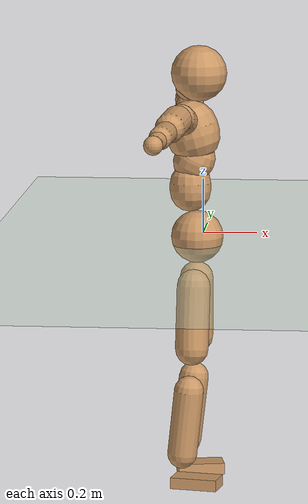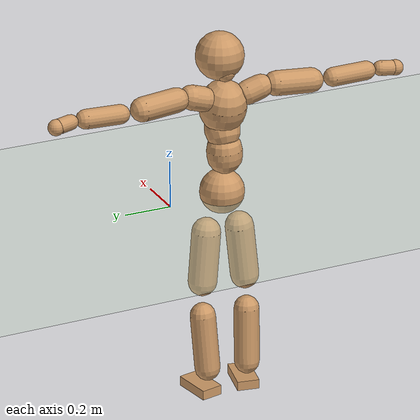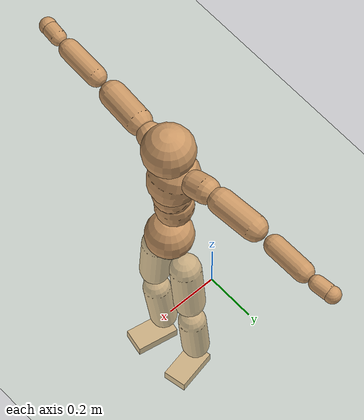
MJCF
<mujoco model="humanoid">
  <compiler coordinate="local"/>
  <default>
    <joint damping="0.0" armature="0.01" stiffness="0.0" limited="true"/>
    <geom conaffinity="1" condim="3" contype="7" margin="0.001" rgba="0.8 0.6 .4 1"/>
  </default>
  <asset>
    <texture type="skybox" builtin="gradient" rgb1=".4 .5 .6" rgb2="0 0 0" width="100" height="100"/>
    <texture builtin="flat" height="1278" mark="cross" markrgb="1 1 1" name="texgeom" random="0.01" rgb1="0.8 0.6 0.4" rgb2="0.8 0.6 0.4" type="cube" width="127"/>
    <texture builtin="checker" height="100" name="texplane" rgb1="0 0 0" rgb2="0.8 0.8 0.8" type="2d" width="100"/>
    <material name="MatPlane" reflectance="0.5" shininess="1" specular="1" texrepeat="60 60" texture="texplane"/>
    <material name="geom" texture="texgeom" texuniform="true"/>
  </asset>
  <worldbody>
    <light cutoff="100" diffuse="1 1 1" dir="-0 0 -1.3" directional="true" exponent="1" pos="0 0 1.3" specular=".1 .1 .1"/>
    <geom conaffinity="1" condim="3" name="floor" pos="0 0 0" rgba="0.8 0.9 0.8 1" size="100 100 .2" type="plane" material="MatPlane"/>
    <body name="Pelvis" pos="-0.0018 -0.2341 0.0282">
      <freejoint name="Pelvis"/>
      <geom type="sphere" contype="1" conaffinity="1" density="500" size="0.0950" pos="0.0000 0.0000 0.0000" name="Pelvis"/>
      <body name="L_Hip" pos="-0.0084 0.0706 -0.0936">
        <joint name="L_Hip_x" type="hinge" pos="0 0 0" axis="1 0 0" stiffness="800" damping="80" armature="0.02" range="-180.0000 180.0000"/>
        <joint name="L_Hip_y" type="hinge" pos="0 0 0" axis="0 1 0" stiffness="800" damping="80" armature="0.02" range="-180.0000 180.0000"/>
        <joint name="L_Hip_z" type="hinge" pos="0 0 0" axis="0 0 1" stiffness="800" damping="80" armature="0.02" range="-180.0000 180.0000"/>
        <geom type="capsule" contype="1" conaffinity="1" density="500" fromto="-0.0009 0.0066 -0.0745 -0.0037 0.0263 -0.2979" size="0.0615" name="L_Hip"/>
        <body name="L_Knee" pos="-0.0046 0.0329 -0.3724">
          <joint name="L_Knee_x" type="hinge" pos="0 0 0" axis="1 0 0" stiffness="800" damping="80" armature="0.02" range="-180.0000 180.0000"/>
          <joint name="L_Knee_y" type="hinge" pos="0 0 0" axis="0 1 0" stiffness="800" damping="80" armature="0.02" range="-180.0000 180.0000"/>
          <joint name="L_Knee_z" type="hinge" pos="0 0 0" axis="0 0 1" stiffness="800" damping="80" armature="0.02" range="-180.0000 180.0000"/>
          <geom type="capsule" contype="1" conaffinity="1" density="500" fromto="-0.0089 -0.0027 -0.0792 -0.0356 -0.0110 -0.3166" size="0.0544" name="L_Knee"/>
          <body name="L_Ankle" pos="-0.0445 -0.0137 -0.3958">
            <joint name="L_Ankle_x" type="hinge" pos="0 0 0" axis="1 0 0" stiffness="800" damping="80" armature="0.02" range="-180.0000 180.0000"/>
            <joint name="L_Ankle_y" type="hinge" pos="0 0 0" axis="0 1 0" stiffness="800" damping="80" armature="0.02" range="-180.0000 180.0000"/>
            <joint name="L_Ankle_z" type="hinge" pos="0 0 0" axis="0 0 1" stiffness="800" damping="80" armature="0.02" range="-180.0000 180.0000"/>
            <geom type="box" contype="1" conaffinity="1" density="500" pos="0.0598 0.0118 -0.0279" size="0.0847 0.047 0.0211" quat="0.9953 0.0000 0.0000 0.0971" name="L_Ankle"/>
            <body name="L_Toe" pos="0.1195 0.0235 -0.0557">
              <joint name="L_Toe_x" type="hinge" pos="0 0 0" axis="1 0 0" stiffness="500" damping="50" armature="0.02" range="-180.0000 180.0000"/>
              <joint name="L_Toe_y" type="hinge" pos="0 0 0" axis="0 1 0" stiffness="500" damping="50" armature="0.02" range="-180.0000 180.0000"/>
              <joint name="L_Toe_z" type="hinge" pos="0 0 0" axis="0 0 1" stiffness="500" damping="50" armature="0.02" range="-180.0000 180.0000"/>
              <geom type="box" contype="1" conaffinity="1" density="500" pos="0.0000 0.0000 0.0271" size="0.001 0.0024 0.001" quat="0.9946 0.0000 0.0000 0.1034" name="L_Toe"/>
            </body>
          </body>
        </body>
      </body>
      <body name="R_Hip" pos="-0.0053 -0.0684 -0.0926">
        <joint name="R_Hip_x" type="hinge" pos="0 0 0" axis="1 0 0" stiffness="800" damping="80" armature="0.02" range="-180.0000 180.0000"/>
        <joint name="R_Hip_y" type="hinge" pos="0 0 0" axis="0 1 0" stiffness="800" damping="80" armature="0.02" range="-180.0000 180.0000"/>
        <joint name="R_Hip_z" type="hinge" pos="0 0 0" axis="0 0 1" stiffness="800" damping="80" armature="0.02" range="-180.0000 180.0000"/>
        <geom type="capsule" contype="1" conaffinity="1" density="500" fromto="-0.0016 -0.0076 -0.0763 -0.0066 -0.0302 -0.3050" size="0.0606" name="R_Hip"/>
        <body name="R_Knee" pos="-0.0082 -0.0378 -0.3813">
          <joint name="R_Knee_x" type="hinge" pos="0 0 0" axis="1 0 0" stiffness="800" damping="80" armature="0.02" range="-180.0000 180.0000"/>
          <joint name="R_Knee_y" type="hinge" pos="0 0 0" axis="0 1 0" stiffness="800" damping="80" armature="0.02" range="-180.0000 180.0000"/>
          <joint name="R_Knee_z" type="hinge" pos="0 0 0" axis="0 0 1" stiffness="800" damping="80" armature="0.02" range="-180.0000 180.0000"/>
          <geom type="capsule" contype="1" conaffinity="1" density="500" fromto="-0.0085 0.0032 -0.0793 -0.0342 0.0129 -0.3172" size="0.0544" name="R_Knee"/>
          <body name="R_Ankle" pos="-0.0427 0.0161 -0.3965">
            <joint name="R_Ankle_x" type="hinge" pos="0 0 0" axis="1 0 0" stiffness="800" damping="80" armature="0.02" range="-180.0000 180.0000"/>
            <joint name="R_Ankle_y" type="hinge" pos="0 0 0" axis="0 1 0" stiffness="800" damping="80" armature="0.02" range="-180.0000 180.0000"/>
            <joint name="R_Ankle_z" type="hinge" pos="0 0 0" axis="0 0 1" stiffness="800" damping="80" armature="0.02" range="-180.0000 180.0000"/>
            <geom type="box" contype="1" conaffinity="1" density="500" pos="0.0616 -0.0118 -0.0239" size="0.086 0.0479 0.0207" quat="0.9955 0.0000 0.0000 -0.0948" name="R_Ankle"/>
            <body name="R_Toe" pos="0.1232 -0.0237 -0.0478">
              <joint name="R_Toe_x" type="hinge" pos="0 0 0" axis="1 0 0" stiffness="500" damping="50" armature="0.02" range="-180.0000 180.0000"/>
              <joint name="R_Toe_y" type="hinge" pos="0 0 0" axis="0 1 0" stiffness="500" damping="50" armature="0.02" range="-180.0000 180.0000"/>
              <joint name="R_Toe_z" type="hinge" pos="0 0 0" axis="0 0 1" stiffness="500" damping="50" armature="0.02" range="-180.0000 180.0000"/>
              <geom type="box" contype="1" conaffinity="1" density="500" pos="0.0000 0.0000 0.0253" size="0.001 0.0024 0.0011" quat="0.9963 0.0000 0.0000 -0.0856" name="R_Toe"/>
            </body>
          </body>
        </body>
      </body>
      <body name="Torso" pos="-0.0252 -0.0026 0.1107">
        <joint name="Torso_x" type="hinge" pos="0 0 0" axis="1 0 0" stiffness="1000" damping="100" armature="0.02" range="-180.0000 180.0000"/>
        <joint name="Torso_y" type="hinge" pos="0 0 0" axis="0 1 0" stiffness="1000" damping="100" armature="0.02" range="-180.0000 180.0000"/>
        <joint name="Torso_z" type="hinge" pos="0 0 0" axis="0 0 1" stiffness="1000" damping="100" armature="0.02" range="-180.0000 180.0000"/>
        <geom type="capsule" contype="1" conaffinity="1" density="500" fromto="0.0004 0.0032 0.0852 0.0003 0.0021 0.0568" size="0.0746" name="Torso"/>
        <body name="Spine" pos="0.0007 0.0053 0.142">
          <joint name="Spine_x" type="hinge" pos="0 0 0" axis="1 0 0" stiffness="1000" damping="100" armature="0.02" range="-180.0000 180.0000"/>
          <joint name="Spine_y" type="hinge" pos="0 0 0" axis="0 1 0" stiffness="1000" damping="100" armature="0.02" range="-180.0000 180.0000"/>
          <joint name="Spine_z" type="hinge" pos="0 0 0" axis="0 0 1" stiffness="1000" damping="100" armature="0.02" range="-180.0000 180.0000"/>
          <geom type="capsule" contype="1" conaffinity="1" density="500" fromto="0.0162 0.0010 0.0328 0.0108 0.0006 0.0219" size="0.0744" name="Spine"/>
          <body name="Chest" pos="0.0271 0.0016 0.0547">
            <joint name="Chest_x" type="hinge" pos="0 0 0" axis="1 0 0" stiffness="1000" damping="100" armature="0.02" range="-180.0000 180.0000"/>
            <joint name="Chest_y" type="hinge" pos="0 0 0" axis="0 1 0" stiffness="1000" damping="100" armature="0.02" range="-180.0000 180.0000"/>
            <joint name="Chest_z" type="hinge" pos="0 0 0" axis="0 0 1" stiffness="1000" damping="100" armature="0.02" range="-180.0000 180.0000"/>
            <geom type="capsule" contype="1" conaffinity="1" density="500" fromto="-0.0253 -0.0011 0.0935 -0.0169 -0.0007 0.0623" size="0.0975" name="Chest"/>
            <body name="Neck" pos="-0.0487 -0.003 0.2214">
              <joint name="Neck_x" type="hinge" pos="0 0 0" axis="1 0 0" stiffness="500" damping="50" armature="0.02" range="-180.0000 180.0000"/>
              <joint name="Neck_y" type="hinge" pos="0 0 0" axis="0 1 0" stiffness="500" damping="50" armature="0.02" range="-180.0000 180.0000"/>
              <joint name="Neck_z" type="hinge" pos="0 0 0" axis="0 0 1" stiffness="500" damping="50" armature="0.02" range="-180.0000 180.0000"/>
              <geom type="capsule" contype="1" conaffinity="1" density="500" fromto="0.0105 0.0010 0.0135 0.0419 0.0040 0.0540" size="0.0433" name="Neck"/>
              <body name="Head" pos="0.0524 0.005 0.0674">
                <joint name="Head_x" type="hinge" pos="0 0 0" axis="1 0 0" stiffness="500" damping="50" armature="0.02" range="-180.0000 180.0000"/>
                <joint name="Head_y" type="hinge" pos="0 0 0" axis="0 1 0" stiffness="500" damping="50" armature="0.02" range="-180.0000 180.0000"/>
                <joint name="Head_z" type="hinge" pos="0 0 0" axis="0 0 1" stiffness="500" damping="50" armature="0.02" range="-180.0000 180.0000"/>
                <geom type="sphere" contype="1" conaffinity="1" density="500" size="0.1012" pos="0.0000 0.0000 0.0000" name="Head"/>
              </body>
            </body>
            <body name="L_Thorax" pos="-0.0364 0.0782 0.1244">
              <joint name="L_Thorax_x" type="hinge" pos="0 0 0" axis="1 0 0" stiffness="500" damping="50" armature="0.02" range="-180.0000 180.0000"/>
              <joint name="L_Thorax_y" type="hinge" pos="0 0 0" axis="0 1 0" stiffness="500" damping="50" armature="0.02" range="-180.0000 180.0000"/>
              <joint name="L_Thorax_z" type="hinge" pos="0 0 0" axis="0 0 1" stiffness="500" damping="50" armature="0.02" range="-180.0000 180.0000"/>
              <geom type="capsule" contype="1" conaffinity="1" density="500" fromto="-0.0016 0.0180 0.0060 -0.0063 0.0719 0.0240" size="0.0519" name="L_Thorax"/>
              <body name="L_Shoulder" pos="-0.0079 0.0899 0.0301">
                <joint name="L_Shoulder_x" type="hinge" pos="0 0 0" axis="1 0 0" stiffness="500" damping="50" armature="0.02" range="-720.0000 720.0000"/>
                <joint name="L_Shoulder_y" type="hinge" pos="0 0 0" axis="0 1 0" stiffness="500" damping="50" armature="0.02" range="-720.0000 720.0000"/>
                <joint name="L_Shoulder_z" type="hinge" pos="0 0 0" axis="0 0 1" stiffness="500" damping="50" armature="0.02" range="-720.0000 720.0000"/>
                <geom type="capsule" contype="1" conaffinity="1" density="500" fromto="-0.0054 0.0516 -0.0024 -0.0217 0.2062 -0.0098" size="0.0512" name="L_Shoulder"/>
                <body name="L_Elbow" pos="-0.0271 0.2578 -0.0122">
                  <joint name="L_Elbow_x" type="hinge" pos="0 0 0" axis="1 0 0" stiffness="500" damping="50" armature="0.02" range="-720.0000 720.0000"/>
                  <joint name="L_Elbow_y" type="hinge" pos="0 0 0" axis="0 1 0" stiffness="500" damping="50" armature="0.02" range="-720.0000 720.0000"/>
                  <joint name="L_Elbow_z" type="hinge" pos="0 0 0" axis="0 0 1" stiffness="500" damping="50" armature="0.02" range="-720.0000 720.0000"/>
                  <geom type="capsule" contype="1" conaffinity="1" density="500" fromto="-0.0001 0.0491 0.0017 -0.0004 0.1964 0.0068" size="0.0402" name="L_Elbow"/>
                  <body name="L_Wrist" pos="-0.0005 0.2454 0.0085">
                    <joint name="L_Wrist_x" type="hinge" pos="0 0 0" axis="1 0 0" stiffness="300" damping="30" armature="0.02" range="-180.0000 180.0000"/>
                    <joint name="L_Wrist_y" type="hinge" pos="0 0 0" axis="0 1 0" stiffness="300" damping="30" armature="0.02" range="-180.0000 180.0000"/>
                    <joint name="L_Wrist_z" type="hinge" pos="0 0 0" axis="0 0 1" stiffness="300" damping="30" armature="0.02" range="-180.0000 180.0000"/>
                    <geom type="capsule" contype="1" conaffinity="1" density="500" fromto="-0.0029 0.0165 -0.0017 -0.0114 0.0661 -0.0069" size="0.0313" name="L_Wrist"/>
                    <body name="L_Hand" pos="-0.0143 0.0826 -0.0086">
                      <joint name="L_Hand_x" type="hinge" pos="0 0 0" axis="1 0 0" stiffness="300" damping="30" armature="0.02" range="-180.0000 180.0000"/>
                      <joint name="L_Hand_y" type="hinge" pos="0 0 0" axis="0 1 0" stiffness="300" damping="30" armature="0.02" range="-180.0000 180.0000"/>
                      <joint name="L_Hand_z" type="hinge" pos="0 0 0" axis="0 0 1" stiffness="300" damping="30" armature="0.02" range="-180.0000 180.0000"/>
                      <geom type="sphere" contype="1" conaffinity="1" density="500" size="0.0332" pos="0.0000 0.0000 0.0000" name="L_Hand"/>
                    </body>
                  </body>
                </body>
              </body>
            </body>
            <body name="R_Thorax" pos="-0.0413 -0.0807 0.1215">
              <joint name="R_Thorax_x" type="hinge" pos="0 0 0" axis="1 0 0" stiffness="500" damping="50" armature="0.02" range="-180.0000 180.0000"/>
              <joint name="R_Thorax_y" type="hinge" pos="0 0 0" axis="0 1 0" stiffness="500" damping="50" armature="0.02" range="-180.0000 180.0000"/>
              <joint name="R_Thorax_z" type="hinge" pos="0 0 0" axis="0 0 1" stiffness="500" damping="50" armature="0.02" range="-180.0000 180.0000"/>
              <geom type="capsule" contype="1" conaffinity="1" density="500" fromto="-0.0018 -0.0189 0.0064 -0.0073 -0.0755 0.0256" size="0.0507" name="R_Thorax"/>
              <body name="R_Shoulder" pos="-0.0091 -0.0944 0.032">
                <joint name="R_Shoulder_x" type="hinge" pos="0 0 0" axis="1 0 0" stiffness="500" damping="50" armature="0.02" range="-720.0000 720.0000"/>
                <joint name="R_Shoulder_y" type="hinge" pos="0 0 0" axis="0 1 0" stiffness="500" damping="50" armature="0.02" range="-720.0000 720.0000"/>
                <joint name="R_Shoulder_z" type="hinge" pos="0 0 0" axis="0 0 1" stiffness="500" damping="50" armature="0.02" range="-720.0000 720.0000"/>
                <geom type="capsule" contype="1" conaffinity="1" density="500" fromto="-0.0042 -0.0503 -0.0026 -0.0166 -0.2013 -0.0102" size="0.0526" name="R_Shoulder"/>
                <body name="R_Elbow" pos="-0.0208 -0.2516 -0.0128">
                  <joint name="R_Elbow_x" type="hinge" pos="0 0 0" axis="1 0 0" stiffness="500" damping="50" armature="0.02" range="-720.0000 720.0000"/>
                  <joint name="R_Elbow_y" type="hinge" pos="0 0 0" axis="0 1 0" stiffness="500" damping="50" armature="0.02" range="-720.0000 720.0000"/>
                  <joint name="R_Elbow_z" type="hinge" pos="0 0 0" axis="0 0 1" stiffness="500" damping="50" armature="0.02" range="-720.0000 720.0000"/>
                  <geom type="capsule" contype="1" conaffinity="1" density="500" fromto="-0.0011 -0.0503 0.0014 -0.0044 -0.2011 0.0056" size="0.0403" name="R_Elbow"/>
                  <body name="R_Wrist" pos="-0.0055 -0.2514 0.007">
                    <joint name="R_Wrist_x" type="hinge" pos="0 0 0" axis="1 0 0" stiffness="300" damping="30" armature="0.02" range="-180.0000 180.0000"/>
                    <joint name="R_Wrist_y" type="hinge" pos="0 0 0" axis="0 1 0" stiffness="300" damping="30" armature="0.02" range="-180.0000 180.0000"/>
                    <joint name="R_Wrist_z" type="hinge" pos="0 0 0" axis="0 0 1" stiffness="300" damping="30" armature="0.02" range="-180.0000 180.0000"/>
                    <geom type="capsule" contype="1" conaffinity="1" density="500" fromto="-0.0020 -0.0166 -0.0013 -0.0082 -0.0664 -0.0052" size="0.032" name="R_Wrist"/>
                    <body name="R_Hand" pos="-0.0102 -0.083 -0.0065">
                      <joint name="R_Hand_x" type="hinge" pos="0 0 0" axis="1 0 0" stiffness="300" damping="30" armature="0.02" range="-180.0000 180.0000"/>
                      <joint name="R_Hand_y" type="hinge" pos="0 0 0" axis="0 1 0" stiffness="300" damping="30" armature="0.02" range="-180.0000 180.0000"/>
                      <joint name="R_Hand_z" type="hinge" pos="0 0 0" axis="0 0 1" stiffness="300" damping="30" armature="0.02" range="-180.0000 180.0000"/>
                      <geom type="sphere" contype="1" conaffinity="1" density="500" size="0.0334" pos="0.0000 0.0000 0.0000" name="R_Hand"/>
                    </body>
                  </body>
                </body>
              </body>
            </body>
          </body>
        </body>
      </body>
    </body>
  </worldbody>
  <actuator>
    <motor name="L_Hip_x" joint="L_Hip_x" gear="500"/>
    <motor name="L_Hip_y" joint="L_Hip_y" gear="500"/>
    <motor name="L_Hip_z" joint="L_Hip_z" gear="500"/>
    <motor name="L_Knee_x" joint="L_Knee_x" gear="500"/>
    <motor name="L_Knee_y" joint="L_Knee_y" gear="500"/>
    <motor name="L_Knee_z" joint="L_Knee_z" gear="500"/>
    <motor name="L_Ankle_x" joint="L_Ankle_x" gear="500"/>
    <motor name="L_Ankle_y" joint="L_Ankle_y" gear="500"/>
    <motor name="L_Ankle_z" joint="L_Ankle_z" gear="500"/>
    <motor name="L_Toe_x" joint="L_Toe_x" gear="500"/>
    <motor name="L_Toe_y" joint="L_Toe_y" gear="500"/>
    <motor name="L_Toe_z" joint="L_Toe_z" gear="500"/>
    <motor name="R_Hip_x" joint="R_Hip_x" gear="500"/>
    <motor name="R_Hip_y" joint="R_Hip_y" gear="500"/>
    <motor name="R_Hip_z" joint="R_Hip_z" gear="500"/>
    <motor name="R_Knee_x" joint="R_Knee_x" gear="500"/>
    <motor name="R_Knee_y" joint="R_Knee_y" gear="500"/>
    <motor name="R_Knee_z" joint="R_Knee_z" gear="500"/>
    <motor name="R_Ankle_x" joint="R_Ankle_x" gear="500"/>
    <motor name="R_Ankle_y" joint="R_Ankle_y" gear="500"/>
    <motor name="R_Ankle_z" joint="R_Ankle_z" gear="500"/>
    <motor name="R_Toe_x" joint="R_Toe_x" gear="500"/>
    <motor name="R_Toe_y" joint="R_Toe_y" gear="500"/>
    <motor name="R_Toe_z" joint="R_Toe_z" gear="500"/>
    <motor name="Torso_x" joint="Torso_x" gear="500"/>
    <motor name="Torso_y" joint="Torso_y" gear="500"/>
    <motor name="Torso_z" joint="Torso_z" gear="500"/>
    <motor name="Spine_x" joint="Spine_x" gear="500"/>
    <motor name="Spine_y" joint="Spine_y" gear="500"/>
    <motor name="Spine_z" joint="Spine_z" gear="500"/>
    <motor name="Chest_x" joint="Chest_x" gear="500"/>
    <motor name="Chest_y" joint="Chest_y" gear="500"/>
    <motor name="Chest_z" joint="Chest_z" gear="500"/>
    <motor name="Neck_x" joint="Neck_x" gear="500"/>
    <motor name="Neck_y" joint="Neck_y" gear="500"/>
    <motor name="Neck_z" joint="Neck_z" gear="500"/>
    <motor name="Head_x" joint="Head_x" gear="500"/>
    <motor name="Head_y" joint="Head_y" gear="500"/>
    <motor name="Head_z" joint="Head_z" gear="500"/>
    <motor name="L_Thorax_x" joint="L_Thorax_x" gear="500"/>
    <motor name="L_Thorax_y" joint="L_Thorax_y" gear="500"/>
    <motor name="L_Thorax_z" joint="L_Thorax_z" gear="500"/>
    <motor name="L_Shoulder_x" joint="L_Shoulder_x" gear="500"/>
    <motor name="L_Shoulder_y" joint="L_Shoulder_y" gear="500"/>
    <motor name="L_Shoulder_z" joint="L_Shoulder_z" gear="500"/>
    <motor name="L_Elbow_x" joint="L_Elbow_x" gear="500"/>
    <motor name="L_Elbow_y" joint="L_Elbow_y" gear="500"/>
    <motor name="L_Elbow_z" joint="L_Elbow_z" gear="500"/>
    <motor name="L_Wrist_x" joint="L_Wrist_x" gear="500"/>
    <motor name="L_Wrist_y" joint="L_Wrist_y" gear="500"/>
    <motor name="L_Wrist_z" joint="L_Wrist_z" gear="500"/>
    <motor name="L_Hand_x" joint="L_Hand_x" gear="500"/>
    <motor name="L_Hand_y" joint="L_Hand_y" gear="500"/>
    <motor name="L_Hand_z" joint="L_Hand_z" gear="500"/>
    <motor name="R_Thorax_x" joint="R_Thorax_x" gear="500"/>
    <motor name="R_Thorax_y" joint="R_Thorax_y" gear="500"/>
    <motor name="R_Thorax_z" joint="R_Thorax_z" gear="500"/>
    <motor name="R_Shoulder_x" joint="R_Shoulder_x" gear="500"/>
    <motor name="R_Shoulder_y" joint="R_Shoulder_y" gear="500"/>
    <motor name="R_Shoulder_z" joint="R_Shoulder_z" gear="500"/>
    <motor name="R_Elbow_x" joint="R_Elbow_x" gear="500"/>
    <motor name="R_Elbow_y" joint="R_Elbow_y" gear="500"/>
    <motor name="R_Elbow_z" joint="R_Elbow_z" gear="500"/>
    <motor name="R_Wrist_x" joint="R_Wrist_x" gear="500"/>
    <motor name="R_Wrist_y" joint="R_Wrist_y" gear="500"/>
    <motor name="R_Wrist_z" joint="R_Wrist_z" gear="500"/>
    <motor name="R_Hand_x" joint="R_Hand_x" gear="500"/>
    <motor name="R_Hand_y" joint="R_Hand_y" gear="500"/>
    <motor name="R_Hand_z" joint="R_Hand_z" gear="500"/>
  </actuator>
  <contact>
    <exclude body1="Torso" body2="Chest"/>
    <exclude body1="Head" body2="Chest"/>
    <exclude body1="R_Knee" body2="R_Toe"/>
    <exclude body1="R_Knee" body2="L_Ankle"/>
    <exclude body1="R_Knee" body2="L_Toe"/>
    <exclude body1="L_Knee" body2="L_Toe"/>
    <exclude body1="L_Knee" body2="R_Ankle"/>
    <exclude body1="L_Knee" body2="R_Toe"/>
    <exclude body1="L_Shoulder" body2="Chest"/>
    <exclude body1="R_Shoulder" body2="Chest"/>
  </contact>
  <sensor/>
  <size njmax="700" nconmax="700"/>
</mujoco>
